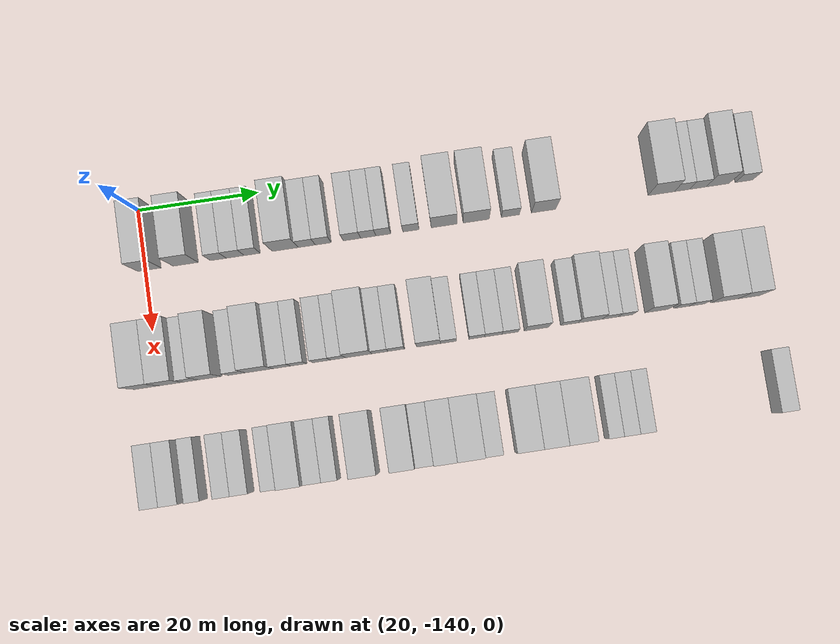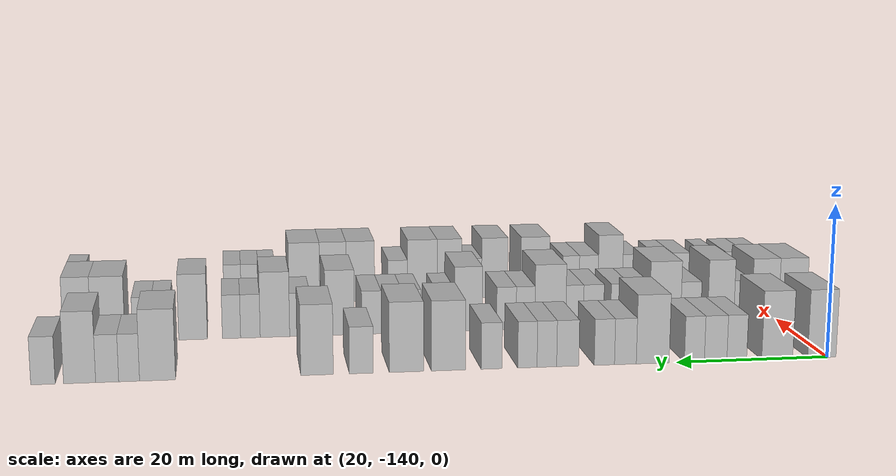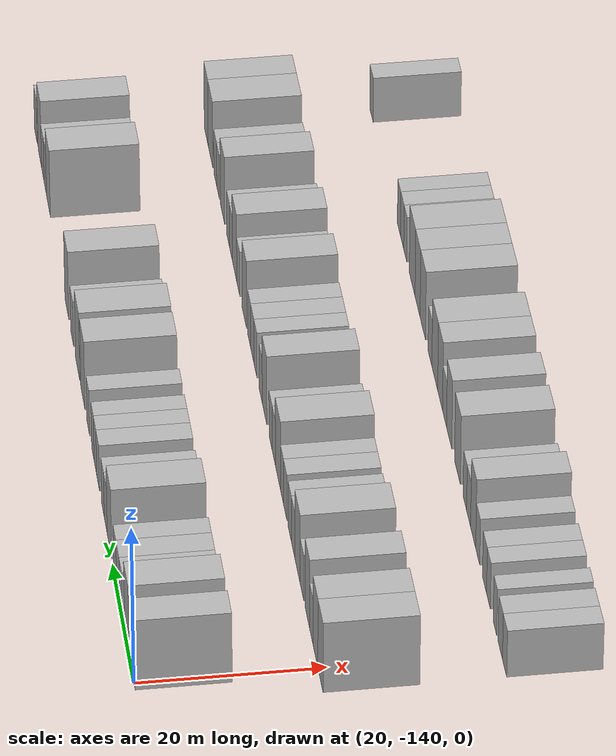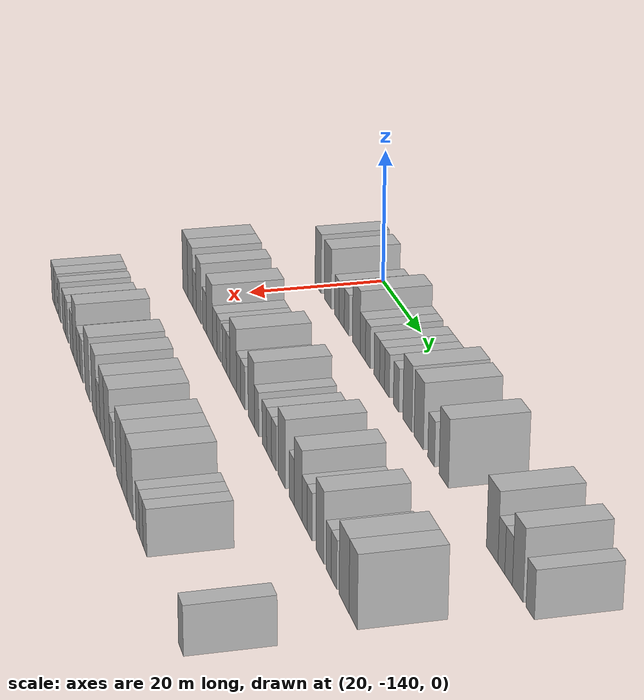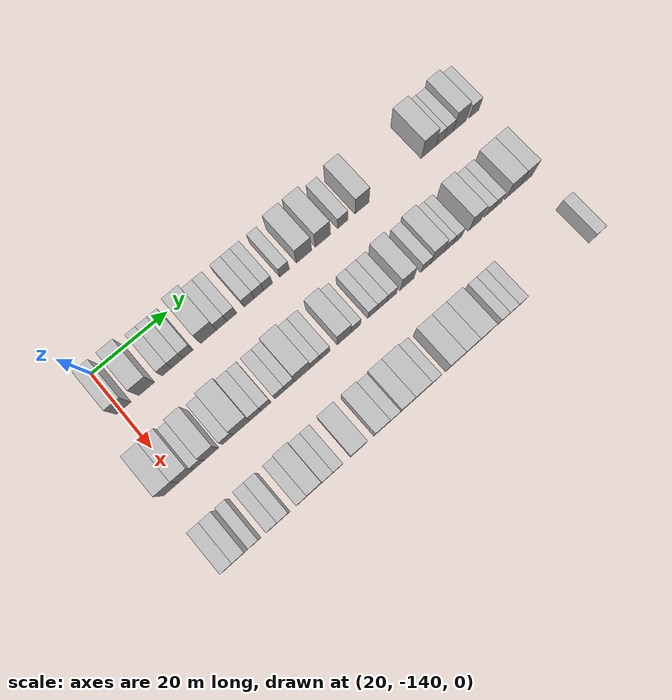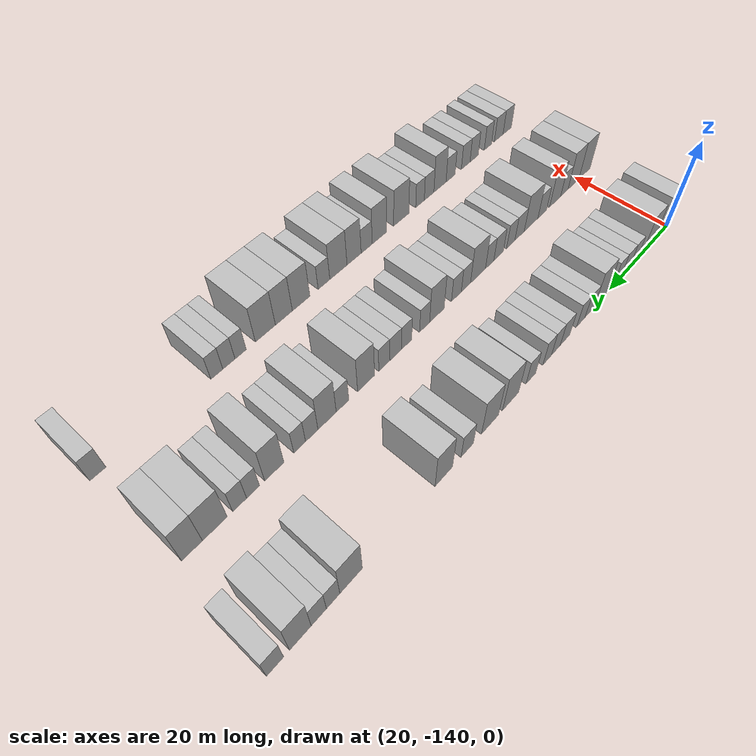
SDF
<sdf version="1.6">
 <world name="default">
  <model name="building_25">
   <static>1</static>
   <pose>25.0000 -139.2544 0 0.000000 0.000000 0.000000</pose>
   <link name="link">
    <pose>0 0 4.50 0 0 0</pose>
    <collision name="collision"><geometry><box><size>10.0000 3.7864 9.0000</size></box></geometry></collision>
    <visual name="visual">
     <cast_shadows>0</cast_shadows>
     <geometry><box><size>10.0000 3.7864 9.0000</size></box></geometry>
     <material>
      <script>
       <uri>model://HANNAS_wall/materials/scripts</uri>
       <uri>model://HANNAS_wall/materials/textures</uri>
       <name>vrc/HANNAS_wall</name>
      </script>
     </material>
    </visual>
   </link>
  </model>
  <model name="building_26">
   <static>1</static>
   <pose>25.0000 -133.3032 0 0.000000 0.000000 0.000000</pose>
   <link name="link">
    <pose>0 0 4.50 0 0 0</pose>
    <collision name="collision"><geometry><box><size>10.0000 4.1161 9.0000</size></box></geometry></collision>
    <visual name="visual">
     <cast_shadows>0</cast_shadows>
     <geometry><box><size>10.0000 4.1161 9.0000</size></box></geometry>
     <material>
      <script>
       <uri>model://HANNAS_wall/materials/scripts</uri>
       <uri>model://HANNAS_wall/materials/textures</uri>
       <name>vrc/HANNAS_wall</name>
      </script>
     </material>
    </visual>
   </link>
  </model>
  <model name="building_27">
   <static>1</static>
   <pose>25.0000 -127.9376 0 0.000000 0.000000 0.000000</pose>
   <link name="link">
    <pose>0 0 3.00 0 0 0</pose>
    <collision name="collision"><geometry><box><size>10.0000 2.6151 6.0000</size></box></geometry></collision>
    <visual name="visual">
     <cast_shadows>0</cast_shadows>
     <geometry><box><size>10.0000 2.6151 6.0000</size></box></geometry>
     <material>
      <script>
       <uri>model://HANNAS_wall/materials/scripts</uri>
       <uri>model://HANNAS_wall/materials/textures</uri>
       <name>vrc/HANNAS_wall</name>
      </script>
     </material>
    </visual>
   </link>
  </model>
  <model name="building_28">
   <static>1</static>
   <pose>25.0000 -125.1480 0 0.000000 0.000000 0.000000</pose>
   <link name="link">
    <pose>0 0 3.00 0 0 0</pose>
    <collision name="collision"><geometry><box><size>10.0000 2.9643 6.0000</size></box></geometry></collision>
    <visual name="visual">
     <cast_shadows>0</cast_shadows>
     <geometry><box><size>10.0000 2.9643 6.0000</size></box></geometry>
     <material>
      <script>
       <uri>model://HANNAS_wall/materials/scripts</uri>
       <uri>model://HANNAS_wall/materials/textures</uri>
       <name>vrc/HANNAS_wall</name>
      </script>
     </material>
    </visual>
   </link>
  </model>
  <model name="building_29">
   <static>1</static>
   <pose>25.0000 -122.3587 0 0.000000 0.000000 0.000000</pose>
   <link name="link">
    <pose>0 0 3.00 0 0 0</pose>
    <collision name="collision"><geometry><box><size>10.0000 2.6142 6.0000</size></box></geometry></collision>
    <visual name="visual">
     <cast_shadows>0</cast_shadows>
     <geometry><box><size>10.0000 2.6142 6.0000</size></box></geometry>
     <material>
      <script>
       <uri>model://HANNAS_wall/materials/scripts</uri>
       <uri>model://HANNAS_wall/materials/textures</uri>
       <name>vrc/HANNAS_wall</name>
      </script>
     </material>
    </visual>
   </link>
  </model>
  <model name="building_30">
   <static>1</static>
   <pose>25.0000 -116.9087 0 0.000000 0.000000 0.000000</pose>
   <link name="link">
    <pose>0 0 4.50 0 0 0</pose>
    <collision name="collision"><geometry><box><size>10.0000 4.2858 9.0000</size></box></geometry></collision>
    <visual name="visual">
     <cast_shadows>0</cast_shadows>
     <geometry><box><size>10.0000 4.2858 9.0000</size></box></geometry>
     <material>
      <script>
       <uri>model://HANNAS_wall/materials/scripts</uri>
       <uri>model://HANNAS_wall/materials/textures</uri>
       <name>vrc/HANNAS_wall</name>
      </script>
     </material>
    </visual>
   </link>
  </model>
  <model name="building_31">
   <static>1</static>
   <pose>25.0000 -113.3507 0 0.000000 0.000000 0.000000</pose>
   <link name="link">
    <pose>0 0 3.00 0 0 0</pose>
    <collision name="collision"><geometry><box><size>10.0000 2.8301 6.0000</size></box></geometry></collision>
    <visual name="visual">
     <cast_shadows>0</cast_shadows>
     <geometry><box><size>10.0000 2.8301 6.0000</size></box></geometry>
     <material>
      <script>
       <uri>model://HANNAS_wall/materials/scripts</uri>
       <uri>model://HANNAS_wall/materials/textures</uri>
       <name>vrc/HANNAS_wall</name>
      </script>
     </material>
    </visual>
   </link>
  </model>
  <model name="building_32">
   <static>1</static>
   <pose>25.0000 -110.6282 0 0.000000 0.000000 0.000000</pose>
   <link name="link">
    <pose>0 0 3.00 0 0 0</pose>
    <collision name="collision"><geometry><box><size>10.0000 2.6151 6.0000</size></box></geometry></collision>
    <visual name="visual">
     <cast_shadows>0</cast_shadows>
     <geometry><box><size>10.0000 2.6151 6.0000</size></box></geometry>
     <material>
      <script>
       <uri>model://HANNAS_wall/materials/scripts</uri>
       <uri>model://HANNAS_wall/materials/textures</uri>
       <name>vrc/HANNAS_wall</name>
      </script>
     </material>
    </visual>
   </link>
  </model>
  <model name="building_33">
   <static>1</static>
   <pose>25.0000 -105.8945 0 0.000000 0.000000 0.000000</pose>
   <link name="link">
    <pose>0 0 3.00 0 0 0</pose>
    <collision name="collision"><geometry><box><size>10.0000 2.8522 6.0000</size></box></geometry></collision>
    <visual name="visual">
     <cast_shadows>0</cast_shadows>
     <geometry><box><size>10.0000 2.8522 6.0000</size></box></geometry>
     <material>
      <script>
       <uri>model://HANNAS_wall/materials/scripts</uri>
       <uri>model://HANNAS_wall/materials/textures</uri>
       <name>vrc/HANNAS_wall</name>
      </script>
     </material>
    </visual>
   </link>
  </model>
  <model name="building_34">
   <static>1</static>
   <pose>25.0000 -103.2093 0 0.000000 0.000000 0.000000</pose>
   <link name="link">
    <pose>0 0 3.00 0 0 0</pose>
    <collision name="collision"><geometry><box><size>10.0000 2.5183 6.0000</size></box></geometry></collision>
    <visual name="visual">
     <cast_shadows>0</cast_shadows>
     <geometry><box><size>10.0000 2.5183 6.0000</size></box></geometry>
     <material>
      <script>
       <uri>model://HANNAS_wall/materials/scripts</uri>
       <uri>model://HANNAS_wall/materials/textures</uri>
       <name>vrc/HANNAS_wall</name>
      </script>
     </material>
    </visual>
   </link>
  </model>
  <model name="building_35">
   <static>1</static>
   <pose>25.0000 -100.7163 0 0.000000 0.000000 0.000000</pose>
   <link name="link">
    <pose>0 0 3.00 0 0 0</pose>
    <collision name="collision"><geometry><box><size>10.0000 2.4675 6.0000</size></box></geometry></collision>
    <visual name="visual">
     <cast_shadows>0</cast_shadows>
     <geometry><box><size>10.0000 2.4675 6.0000</size></box></geometry>
     <material>
      <script>
       <uri>model://HANNAS_wall/materials/scripts</uri>
       <uri>model://HANNAS_wall/materials/textures</uri>
       <name>vrc/HANNAS_wall</name>
      </script>
     </material>
    </visual>
   </link>
  </model>
  <model name="building_36">
   <static>1</static>
   <pose>25.0000 -96.1519 0 0.000000 0.000000 0.000000</pose>
   <link name="link">
    <pose>0 0 3.00 0 0 0</pose>
    <collision name="collision"><geometry><box><size>10.0000 2.6613 6.0000</size></box></geometry></collision>
    <visual name="visual">
     <cast_shadows>0</cast_shadows>
     <geometry><box><size>10.0000 2.6613 6.0000</size></box></geometry>
     <material>
      <script>
       <uri>model://HANNAS_wall/materials/scripts</uri>
       <uri>model://HANNAS_wall/materials/textures</uri>
       <name>vrc/HANNAS_wall</name>
      </script>
     </material>
    </visual>
   </link>
  </model>
  <model name="building_37">
   <static>1</static>
   <pose>25.0000 -90.6759 0 0.000000 0.000000 0.000000</pose>
   <link name="link">
    <pose>0 0 4.50 0 0 0</pose>
    <collision name="collision"><geometry><box><size>10.0000 4.2906 9.0000</size></box></geometry></collision>
    <visual name="visual">
     <cast_shadows>0</cast_shadows>
     <geometry><box><size>10.0000 4.2906 9.0000</size></box></geometry>
     <material>
      <script>
       <uri>model://HANNAS_wall/materials/scripts</uri>
       <uri>model://HANNAS_wall/materials/textures</uri>
       <name>vrc/HANNAS_wall</name>
      </script>
     </material>
    </visual>
   </link>
  </model>
  <model name="building_38">
   <static>1</static>
   <pose>25.0000 -85.3787 0 0.000000 0.000000 0.000000</pose>
   <link name="link">
    <pose>0 0 4.50 0 0 0</pose>
    <collision name="collision"><geometry><box><size>10.0000 4.3038 9.0000</size></box></geometry></collision>
    <visual name="visual">
     <cast_shadows>0</cast_shadows>
     <geometry><box><size>10.0000 4.3038 9.0000</size></box></geometry>
     <material>
      <script>
       <uri>model://HANNAS_wall/materials/scripts</uri>
       <uri>model://HANNAS_wall/materials/textures</uri>
       <name>vrc/HANNAS_wall</name>
      </script>
     </material>
    </visual>
   </link>
  </model>
  <model name="building_39">
   <static>1</static>
   <pose>25.0000 -79.7324 0 0.000000 0.000000 0.000000</pose>
   <link name="link">
    <pose>0 0 3.00 0 0 0</pose>
    <collision name="collision"><geometry><box><size>10.0000 2.9890 6.0000</size></box></geometry></collision>
    <visual name="visual">
     <cast_shadows>0</cast_shadows>
     <geometry><box><size>10.0000 2.9890 6.0000</size></box></geometry>
     <material>
      <script>
       <uri>model://HANNAS_wall/materials/scripts</uri>
       <uri>model://HANNAS_wall/materials/textures</uri>
       <name>vrc/HANNAS_wall</name>
      </script>
     </material>
    </visual>
   </link>
  </model>
  <model name="building_40">
   <static>1</static>
   <pose>25.0000 -74.2190 0 0.000000 0.000000 0.000000</pose>
   <link name="link">
    <pose>0 0 4.50 0 0 0</pose>
    <collision name="collision"><geometry><box><size>10.0000 4.0378 9.0000</size></box></geometry></collision>
    <visual name="visual">
     <cast_shadows>0</cast_shadows>
     <geometry><box><size>10.0000 4.0378 9.0000</size></box></geometry>
     <material>
      <script>
       <uri>model://HANNAS_wall/materials/scripts</uri>
       <uri>model://HANNAS_wall/materials/textures</uri>
       <name>vrc/HANNAS_wall</name>
      </script>
     </material>
    </visual>
   </link>
  </model>
  <model name="building_41">
   <static>1</static>
   <pose>25.0000 -54.6580 0 0.000000 0.000000 0.000000</pose>
   <link name="link">
    <pose>0 0 4.50 0 0 0</pose>
    <collision name="collision"><geometry><box><size>10.0000 4.3614 9.0000</size></box></geometry></collision>
    <visual name="visual">
     <cast_shadows>0</cast_shadows>
     <geometry><box><size>10.0000 4.3614 9.0000</size></box></geometry>
     <material>
      <script>
       <uri>model://HANNAS_wall/materials/scripts</uri>
       <uri>model://HANNAS_wall/materials/textures</uri>
       <name>vrc/HANNAS_wall</name>
      </script>
     </material>
    </visual>
   </link>
  </model>
  <model name="building_42">
   <static>1</static>
   <pose>25.0000 -51.2182 0 0.000000 0.000000 0.000000</pose>
   <link name="link">
    <pose>0 0 3.00 0 0 0</pose>
    <collision name="collision"><geometry><box><size>10.0000 2.5180 6.0000</size></box></geometry></collision>
    <visual name="visual">
     <cast_shadows>0</cast_shadows>
     <geometry><box><size>10.0000 2.5180 6.0000</size></box></geometry>
     <material>
      <script>
       <uri>model://HANNAS_wall/materials/scripts</uri>
       <uri>model://HANNAS_wall/materials/textures</uri>
       <name>vrc/HANNAS_wall</name>
      </script>
     </material>
    </visual>
   </link>
  </model>
  <model name="building_43">
   <static>1</static>
   <pose>25.0000 -48.5758 0 0.000000 0.000000 0.000000</pose>
   <link name="link">
    <pose>0 0 3.00 0 0 0</pose>
    <collision name="collision"><geometry><box><size>10.0000 2.7668 6.0000</size></box></geometry></collision>
    <visual name="visual">
     <cast_shadows>0</cast_shadows>
     <geometry><box><size>10.0000 2.7668 6.0000</size></box></geometry>
     <material>
      <script>
       <uri>model://HANNAS_wall/materials/scripts</uri>
       <uri>model://HANNAS_wall/materials/textures</uri>
       <name>vrc/HANNAS_wall</name>
      </script>
     </material>
    </visual>
   </link>
  </model>
  <model name="building_44">
   <static>1</static>
   <pose>25.0000 -45.2678 0 0.000000 0.000000 0.000000</pose>
   <link name="link">
    <pose>0 0 4.50 0 0 0</pose>
    <collision name="collision"><geometry><box><size>10.0000 3.8492 9.0000</size></box></geometry></collision>
    <visual name="visual">
     <cast_shadows>0</cast_shadows>
     <geometry><box><size>10.0000 3.8492 9.0000</size></box></geometry>
     <material>
      <script>
       <uri>model://HANNAS_wall/materials/scripts</uri>
       <uri>model://HANNAS_wall/materials/textures</uri>
       <name>vrc/HANNAS_wall</name>
      </script>
     </material>
    </visual>
   </link>
  </model>
  <model name="building_45">
   <static>1</static>
   <pose>25.0000 -40.8838 0 0.000000 0.000000 0.000000</pose>
   <link name="link">
    <pose>0 0 3.00 0 0 0</pose>
    <collision name="collision"><geometry><box><size>10.0000 2.9189 6.0000</size></box></geometry></collision>
    <visual name="visual">
     <cast_shadows>0</cast_shadows>
     <geometry><box><size>10.0000 2.9189 6.0000</size></box></geometry>
     <material>
      <script>
       <uri>model://HANNAS_wall/materials/scripts</uri>
       <uri>model://HANNAS_wall/materials/textures</uri>
       <name>vrc/HANNAS_wall</name>
      </script>
     </material>
    </visual>
   </link>
  </model>
  <model name="building_135">
   <static>1</static>
   <pose>44.0000 -141.9978 0 0.000000 0.000000 0.000000</pose>
   <link name="link">
    <pose>0 0 4.50 0 0 0</pose>
    <collision name="collision"><geometry><box><size>10.0000 4.0523 9.0000</size></box></geometry></collision>
    <visual name="visual">
     <cast_shadows>0</cast_shadows>
     <geometry><box><size>10.0000 4.0523 9.0000</size></box></geometry>
     <material>
      <script>
       <uri>model://HANNAS_wall/materials/scripts</uri>
       <uri>model://HANNAS_wall/materials/textures</uri>
       <name>vrc/HANNAS_wall</name>
      </script>
     </material>
    </visual>
   </link>
  </model>
  <model name="building_136">
   <static>1</static>
   <pose>44.0000 -138.0297 0 0.000000 0.000000 0.000000</pose>
   <link name="link">
    <pose>0 0 4.50 0 0 0</pose>
    <collision name="collision"><geometry><box><size>10.0000 3.8838 9.0000</size></box></geometry></collision>
    <visual name="visual">
     <cast_shadows>0</cast_shadows>
     <geometry><box><size>10.0000 3.8838 9.0000</size></box></geometry>
     <material>
      <script>
       <uri>model://HANNAS_wall/materials/scripts</uri>
       <uri>model://HANNAS_wall/materials/textures</uri>
       <name>vrc/HANNAS_wall</name>
      </script>
     </material>
    </visual>
   </link>
  </model>
  <model name="building_137">
   <static>1</static>
   <pose>44.0000 -134.7954 0 0.000000 0.000000 0.000000</pose>
   <link name="link">
    <pose>0 0 3.00 0 0 0</pose>
    <collision name="collision"><geometry><box><size>10.0000 2.5848 6.0000</size></box></geometry></collision>
    <visual name="visual">
     <cast_shadows>0</cast_shadows>
     <geometry><box><size>10.0000 2.5848 6.0000</size></box></geometry>
     <material>
      <script>
       <uri>model://HANNAS_wall/materials/scripts</uri>
       <uri>model://HANNAS_wall/materials/textures</uri>
       <name>vrc/HANNAS_wall</name>
      </script>
     </material>
    </visual>
   </link>
  </model>
  <model name="building_138">
   <static>1</static>
   <pose>44.0000 -131.6285 0 0.000000 0.000000 0.000000</pose>
   <link name="link">
    <pose>0 0 4.50 0 0 0</pose>
    <collision name="collision"><geometry><box><size>10.0000 3.7489 9.0000</size></box></geometry></collision>
    <visual name="visual">
     <cast_shadows>0</cast_shadows>
     <geometry><box><size>10.0000 3.7489 9.0000</size></box></geometry>
     <material>
      <script>
       <uri>model://HANNAS_wall/materials/scripts</uri>
       <uri>model://HANNAS_wall/materials/textures</uri>
       <name>vrc/HANNAS_wall</name>
      </script>
     </material>
    </visual>
   </link>
  </model>
  <model name="building_139">
   <static>1</static>
   <pose>44.0000 -127.3191 0 0.000000 0.000000 0.000000</pose>
   <link name="link">
    <pose>0 0 3.00 0 0 0</pose>
    <collision name="collision"><geometry><box><size>10.0000 2.8699 6.0000</size></box></geometry></collision>
    <visual name="visual">
     <cast_shadows>0</cast_shadows>
     <geometry><box><size>10.0000 2.8699 6.0000</size></box></geometry>
     <material>
      <script>
       <uri>model://HANNAS_wall/materials/scripts</uri>
       <uri>model://HANNAS_wall/materials/textures</uri>
       <name>vrc/HANNAS_wall</name>
      </script>
     </material>
    </visual>
   </link>
  </model>
  <model name="building_140">
   <static>1</static>
   <pose>44.0000 -123.6634 0 0.000000 0.000000 0.000000</pose>
   <link name="link">
    <pose>0 0 4.50 0 0 0</pose>
    <collision name="collision"><geometry><box><size>10.0000 4.4414 9.0000</size></box></geometry></collision>
    <visual name="visual">
     <cast_shadows>0</cast_shadows>
     <geometry><box><size>10.0000 4.4414 9.0000</size></box></geometry>
     <material>
      <script>
       <uri>model://HANNAS_wall/materials/scripts</uri>
       <uri>model://HANNAS_wall/materials/textures</uri>
       <name>vrc/HANNAS_wall</name>
      </script>
     </material>
    </visual>
   </link>
  </model>
  <model name="building_141">
   <static>1</static>
   <pose>44.0000 -119.9744 0 0.000000 0.000000 0.000000</pose>
   <link name="link">
    <pose>0 0 3.00 0 0 0</pose>
    <collision name="collision"><geometry><box><size>10.0000 2.9366 6.0000</size></box></geometry></collision>
    <visual name="visual">
     <cast_shadows>0</cast_shadows>
     <geometry><box><size>10.0000 2.9366 6.0000</size></box></geometry>
     <material>
      <script>
       <uri>model://HANNAS_wall/materials/scripts</uri>
       <uri>model://HANNAS_wall/materials/textures</uri>
       <name>vrc/HANNAS_wall</name>
      </script>
     </material>
    </visual>
   </link>
  </model>
  <model name="building_142">
   <static>1</static>
   <pose>44.0000 -117.2152 0 0.000000 0.000000 0.000000</pose>
   <link name="link">
    <pose>0 0 3.00 0 0 0</pose>
    <collision name="collision"><geometry><box><size>10.0000 2.5819 6.0000</size></box></geometry></collision>
    <visual name="visual">
     <cast_shadows>0</cast_shadows>
     <geometry><box><size>10.0000 2.5819 6.0000</size></box></geometry>
     <material>
      <script>
       <uri>model://HANNAS_wall/materials/scripts</uri>
       <uri>model://HANNAS_wall/materials/textures</uri>
       <name>vrc/HANNAS_wall</name>
      </script>
     </material>
    </visual>
   </link>
  </model>
  <model name="building_143">
   <static>1</static>
   <pose>44.0000 -113.5004 0 0.000000 0.000000 0.000000</pose>
   <link name="link">
    <pose>0 0 3.00 0 0 0</pose>
    <collision name="collision"><geometry><box><size>10.0000 2.8476 6.0000</size></box></geometry></collision>
    <visual name="visual">
     <cast_shadows>0</cast_shadows>
     <geometry><box><size>10.0000 2.8476 6.0000</size></box></geometry>
     <material>
      <script>
       <uri>model://HANNAS_wall/materials/scripts</uri>
       <uri>model://HANNAS_wall/materials/textures</uri>
       <name>vrc/HANNAS_wall</name>
      </script>
     </material>
    </visual>
   </link>
  </model>
  <model name="building_144">
   <static>1</static>
   <pose>44.0000 -110.8420 0 0.000000 0.000000 0.000000</pose>
   <link name="link">
    <pose>0 0 3.00 0 0 0</pose>
    <collision name="collision"><geometry><box><size>10.0000 2.4692 6.0000</size></box></geometry></collision>
    <visual name="visual">
     <cast_shadows>0</cast_shadows>
     <geometry><box><size>10.0000 2.4692 6.0000</size></box></geometry>
     <material>
      <script>
       <uri>model://HANNAS_wall/materials/scripts</uri>
       <uri>model://HANNAS_wall/materials/textures</uri>
       <name>vrc/HANNAS_wall</name>
      </script>
     </material>
    </visual>
   </link>
  </model>
  <model name="building_145">
   <static>1</static>
   <pose>44.0000 -107.4415 0 0.000000 0.000000 0.000000</pose>
   <link name="link">
    <pose>0 0 4.50 0 0 0</pose>
    <collision name="collision"><geometry><box><size>10.0000 4.3319 9.0000</size></box></geometry></collision>
    <visual name="visual">
     <cast_shadows>0</cast_shadows>
     <geometry><box><size>10.0000 4.3319 9.0000</size></box></geometry>
     <material>
      <script>
       <uri>model://HANNAS_wall/materials/scripts</uri>
       <uri>model://HANNAS_wall/materials/textures</uri>
       <name>vrc/HANNAS_wall</name>
      </script>
     </material>
    </visual>
   </link>
  </model>
  <model name="building_146">
   <static>1</static>
   <pose>44.0000 -103.9727 0 0.000000 0.000000 0.000000</pose>
   <link name="link">
    <pose>0 0 3.00 0 0 0</pose>
    <collision name="collision"><geometry><box><size>10.0000 2.6058 6.0000</size></box></geometry></collision>
    <visual name="visual">
     <cast_shadows>0</cast_shadows>
     <geometry><box><size>10.0000 2.6058 6.0000</size></box></geometry>
     <material>
      <script>
       <uri>model://HANNAS_wall/materials/scripts</uri>
       <uri>model://HANNAS_wall/materials/textures</uri>
       <name>vrc/HANNAS_wall</name>
      </script>
     </material>
    </visual>
   </link>
  </model>
  <model name="building_147">
   <static>1</static>
   <pose>44.0000 -101.3130 0 0.000000 0.000000 0.000000</pose>
   <link name="link">
    <pose>0 0 3.00 0 0 0</pose>
    <collision name="collision"><geometry><box><size>10.0000 2.7137 6.0000</size></box></geometry></collision>
    <visual name="visual">
     <cast_shadows>0</cast_shadows>
     <geometry><box><size>10.0000 2.7137 6.0000</size></box></geometry>
     <material>
      <script>
       <uri>model://HANNAS_wall/materials/scripts</uri>
       <uri>model://HANNAS_wall/materials/textures</uri>
       <name>vrc/HANNAS_wall</name>
      </script>
     </material>
    </visual>
   </link>
  </model>
  <model name="building_148">
   <static>1</static>
   <pose>44.0000 -96.0257 0 0.000000 0.000000 0.000000</pose>
   <link name="link">
    <pose>0 0 4.50 0 0 0</pose>
    <collision name="collision"><geometry><box><size>10.0000 3.8609 9.0000</size></box></geometry></collision>
    <visual name="visual">
     <cast_shadows>0</cast_shadows>
     <geometry><box><size>10.0000 3.8609 9.0000</size></box></geometry>
     <material>
      <script>
       <uri>model://HANNAS_wall/materials/scripts</uri>
       <uri>model://HANNAS_wall/materials/textures</uri>
       <name>vrc/HANNAS_wall</name>
      </script>
     </material>
    </visual>
   </link>
  </model>
  <model name="building_149">
   <static>1</static>
   <pose>44.0000 -92.7889 0 0.000000 0.000000 0.000000</pose>
   <link name="link">
    <pose>0 0 3.00 0 0 0</pose>
    <collision name="collision"><geometry><box><size>10.0000 2.6127 6.0000</size></box></geometry></collision>
    <visual name="visual">
     <cast_shadows>0</cast_shadows>
     <geometry><box><size>10.0000 2.6127 6.0000</size></box></geometry>
     <material>
      <script>
       <uri>model://HANNAS_wall/materials/scripts</uri>
       <uri>model://HANNAS_wall/materials/textures</uri>
       <name>vrc/HANNAS_wall</name>
      </script>
     </material>
    </visual>
   </link>
  </model>
  <model name="building_150">
   <static>1</static>
   <pose>44.0000 -88.2064 0 0.000000 0.000000 0.000000</pose>
   <link name="link">
    <pose>0 0 3.00 0 0 0</pose>
    <collision name="collision"><geometry><box><size>10.0000 2.5524 6.0000</size></box></geometry></collision>
    <visual name="visual">
     <cast_shadows>0</cast_shadows>
     <geometry><box><size>10.0000 2.5524 6.0000</size></box></geometry>
     <material>
      <script>
       <uri>model://HANNAS_wall/materials/scripts</uri>
       <uri>model://HANNAS_wall/materials/textures</uri>
       <name>vrc/HANNAS_wall</name>
      </script>
     </material>
    </visual>
   </link>
  </model>
  <model name="building_151">
   <static>1</static>
   <pose>44.0000 -85.4962 0 0.000000 0.000000 0.000000</pose>
   <link name="link">
    <pose>0 0 3.00 0 0 0</pose>
    <collision name="collision"><geometry><box><size>10.0000 2.8680 6.0000</size></box></geometry></collision>
    <visual name="visual">
     <cast_shadows>0</cast_shadows>
     <geometry><box><size>10.0000 2.8680 6.0000</size></box></geometry>
     <material>
      <script>
       <uri>model://HANNAS_wall/materials/scripts</uri>
       <uri>model://HANNAS_wall/materials/textures</uri>
       <name>vrc/HANNAS_wall</name>
      </script>
     </material>
    </visual>
   </link>
  </model>
  <model name="building_152">
   <static>1</static>
   <pose>44.0000 -82.7260 0 0.000000 0.000000 0.000000</pose>
   <link name="link">
    <pose>0 0 3.00 0 0 0</pose>
    <collision name="collision"><geometry><box><size>10.0000 2.6724 6.0000</size></box></geometry></collision>
    <visual name="visual">
     <cast_shadows>0</cast_shadows>
     <geometry><box><size>10.0000 2.6724 6.0000</size></box></geometry>
     <material>
      <script>
       <uri>model://HANNAS_wall/materials/scripts</uri>
       <uri>model://HANNAS_wall/materials/textures</uri>
       <name>vrc/HANNAS_wall</name>
      </script>
     </material>
    </visual>
   </link>
  </model>
  <model name="building_153">
   <static>1</static>
   <pose>44.0000 -78.4082 0 0.000000 0.000000 0.000000</pose>
   <link name="link">
    <pose>0 0 4.50 0 0 0</pose>
    <collision name="collision"><geometry><box><size>10.0000 3.9632 9.0000</size></box></geometry></collision>
    <visual name="visual">
     <cast_shadows>0</cast_shadows>
     <geometry><box><size>10.0000 3.9632 9.0000</size></box></geometry>
     <material>
      <script>
       <uri>model://HANNAS_wall/materials/scripts</uri>
       <uri>model://HANNAS_wall/materials/textures</uri>
       <name>vrc/HANNAS_wall</name>
      </script>
     </material>
    </visual>
   </link>
  </model>
  <model name="building_154">
   <static>1</static>
   <pose>44.0000 -73.0214 0 0.000000 0.000000 0.000000</pose>
   <link name="link">
    <pose>0 0 3.00 0 0 0</pose>
    <collision name="collision"><geometry><box><size>10.0000 2.8102 6.0000</size></box></geometry></collision>
    <visual name="visual">
     <cast_shadows>0</cast_shadows>
     <geometry><box><size>10.0000 2.8102 6.0000</size></box></geometry>
     <material>
      <script>
       <uri>model://HANNAS_wall/materials/scripts</uri>
       <uri>model://HANNAS_wall/materials/textures</uri>
       <name>vrc/HANNAS_wall</name>
      </script>
     </material>
    </visual>
   </link>
  </model>
  <model name="building_155">
   <static>1</static>
   <pose>44.0000 -69.6318 0 0.000000 0.000000 0.000000</pose>
   <link name="link">
    <pose>0 0 4.50 0 0 0</pose>
    <collision name="collision"><geometry><box><size>10.0000 3.9691 9.0000</size></box></geometry></collision>
    <visual name="visual">
     <cast_shadows>0</cast_shadows>
     <geometry><box><size>10.0000 3.9691 9.0000</size></box></geometry>
     <material>
      <script>
       <uri>model://HANNAS_wall/materials/scripts</uri>
       <uri>model://HANNAS_wall/materials/textures</uri>
       <name>vrc/HANNAS_wall</name>
      </script>
     </material>
    </visual>
   </link>
  </model>
  <model name="building_156">
   <static>1</static>
   <pose>44.0000 -66.3333 0 0.000000 0.000000 0.000000</pose>
   <link name="link">
    <pose>0 0 3.00 0 0 0</pose>
    <collision name="collision"><geometry><box><size>10.0000 2.6279 6.0000</size></box></geometry></collision>
    <visual name="visual">
     <cast_shadows>0</cast_shadows>
     <geometry><box><size>10.0000 2.6279 6.0000</size></box></geometry>
     <material>
      <script>
       <uri>model://HANNAS_wall/materials/scripts</uri>
       <uri>model://HANNAS_wall/materials/textures</uri>
       <name>vrc/HANNAS_wall</name>
      </script>
     </material>
    </visual>
   </link>
  </model>
  <model name="building_157">
   <static>1</static>
   <pose>44.0000 -63.8006 0 0.000000 0.000000 0.000000</pose>
   <link name="link">
    <pose>0 0 3.00 0 0 0</pose>
    <collision name="collision"><geometry><box><size>10.0000 2.4376 6.0000</size></box></geometry></collision>
    <visual name="visual">
     <cast_shadows>0</cast_shadows>
     <geometry><box><size>10.0000 2.4376 6.0000</size></box></geometry>
     <material>
      <script>
       <uri>model://HANNAS_wall/materials/scripts</uri>
       <uri>model://HANNAS_wall/materials/textures</uri>
       <name>vrc/HANNAS_wall</name>
      </script>
     </material>
    </visual>
   </link>
  </model>
  <model name="building_158">
   <static>1</static>
   <pose>44.0000 -58.6760 0 0.000000 0.000000 0.000000</pose>
   <link name="link">
    <pose>0 0 4.50 0 0 0</pose>
    <collision name="collision"><geometry><box><size>10.0000 3.8116 9.0000</size></box></geometry></collision>
    <visual name="visual">
     <cast_shadows>0</cast_shadows>
     <geometry><box><size>10.0000 3.8116 9.0000</size></box></geometry>
     <material>
      <script>
       <uri>model://HANNAS_wall/materials/scripts</uri>
       <uri>model://HANNAS_wall/materials/textures</uri>
       <name>vrc/HANNAS_wall</name>
      </script>
     </material>
    </visual>
   </link>
  </model>
  <model name="building_159">
   <static>1</static>
   <pose>44.0000 -54.5281 0 0.000000 0.000000 0.000000</pose>
   <link name="link">
    <pose>0 0 3.00 0 0 0</pose>
    <collision name="collision"><geometry><box><size>10.0000 2.4842 6.0000</size></box></geometry></collision>
    <visual name="visual">
     <cast_shadows>0</cast_shadows>
     <geometry><box><size>10.0000 2.4842 6.0000</size></box></geometry>
     <material>
      <script>
       <uri>model://HANNAS_wall/materials/scripts</uri>
       <uri>model://HANNAS_wall/materials/textures</uri>
       <name>vrc/HANNAS_wall</name>
      </script>
     </material>
    </visual>
   </link>
  </model>
  <model name="building_160">
   <static>1</static>
   <pose>44.0000 -51.9869 0 0.000000 0.000000 0.000000</pose>
   <link name="link">
    <pose>0 0 3.00 0 0 0</pose>
    <collision name="collision"><geometry><box><size>10.0000 2.5982 6.0000</size></box></geometry></collision>
    <visual name="visual">
     <cast_shadows>0</cast_shadows>
     <geometry><box><size>10.0000 2.5982 6.0000</size></box></geometry>
     <material>
      <script>
       <uri>model://HANNAS_wall/materials/scripts</uri>
       <uri>model://HANNAS_wall/materials/textures</uri>
       <name>vrc/HANNAS_wall</name>
      </script>
     </material>
    </visual>
   </link>
  </model>
  <model name="building_161">
   <static>1</static>
   <pose>44.0000 -47.4550 0 0.000000 0.000000 0.000000</pose>
   <link name="link">
    <pose>0 0 4.50 0 0 0</pose>
    <collision name="collision"><geometry><box><size>10.0000 4.4655 9.0000</size></box></geometry></collision>
    <visual name="visual">
     <cast_shadows>0</cast_shadows>
     <geometry><box><size>10.0000 4.4655 9.0000</size></box></geometry>
     <material>
      <script>
       <uri>model://HANNAS_wall/materials/scripts</uri>
       <uri>model://HANNAS_wall/materials/textures</uri>
       <name>vrc/HANNAS_wall</name>
      </script>
     </material>
    </visual>
   </link>
  </model>
  <model name="building_162">
   <static>1</static>
   <pose>44.0000 -43.4016 0 0.000000 0.000000 0.000000</pose>
   <link name="link">
    <pose>0 0 4.50 0 0 0</pose>
    <collision name="collision"><geometry><box><size>10.0000 3.6413 9.0000</size></box></geometry></collision>
    <visual name="visual">
     <cast_shadows>0</cast_shadows>
     <geometry><box><size>10.0000 3.6413 9.0000</size></box></geometry>
     <material>
      <script>
       <uri>model://HANNAS_wall/materials/scripts</uri>
       <uri>model://HANNAS_wall/materials/textures</uri>
       <name>vrc/HANNAS_wall</name>
      </script>
     </material>
    </visual>
   </link>
  </model>
  <model name="building_259">
   <static>1</static>
   <pose>63.0000 -142.4930 0 0.000000 0.000000 0.000000</pose>
   <link name="link">
    <pose>0 0 3.00 0 0 0</pose>
    <collision name="collision"><geometry><box><size>10.0000 2.9171 6.0000</size></box></geometry></collision>
    <visual name="visual">
     <cast_shadows>0</cast_shadows>
     <geometry><box><size>10.0000 2.9171 6.0000</size></box></geometry>
     <material>
      <script>
       <uri>model://HANNAS_wall/materials/scripts</uri>
       <uri>model://HANNAS_wall/materials/textures</uri>
       <name>vrc/HANNAS_wall</name>
      </script>
     </material>
    </visual>
   </link>
  </model>
  <model name="building_260">
   <static>1</static>
   <pose>63.0000 -139.5360 0 0.000000 0.000000 0.000000</pose>
   <link name="link">
    <pose>0 0 3.00 0 0 0</pose>
    <collision name="collision"><geometry><box><size>10.0000 2.9970 6.0000</size></box></geometry></collision>
    <visual name="visual">
     <cast_shadows>0</cast_shadows>
     <geometry><box><size>10.0000 2.9970 6.0000</size></box></geometry>
     <material>
      <script>
       <uri>model://HANNAS_wall/materials/scripts</uri>
       <uri>model://HANNAS_wall/materials/textures</uri>
       <name>vrc/HANNAS_wall</name>
      </script>
     </material>
    </visual>
   </link>
  </model>
  <model name="building_261">
   <static>1</static>
   <pose>63.0000 -135.8128 0 0.000000 0.000000 0.000000</pose>
   <link name="link">
    <pose>0 0 3.00 0 0 0</pose>
    <collision name="collision"><geometry><box><size>10.0000 2.4493 6.0000</size></box></geometry></collision>
    <visual name="visual">
     <cast_shadows>0</cast_shadows>
     <geometry><box><size>10.0000 2.4493 6.0000</size></box></geometry>
     <material>
      <script>
       <uri>model://HANNAS_wall/materials/scripts</uri>
       <uri>model://HANNAS_wall/materials/textures</uri>
       <name>vrc/HANNAS_wall</name>
      </script>
     </material>
    </visual>
   </link>
  </model>
  <model name="building_262">
   <static>1</static>
   <pose>63.0000 -131.2306 0 0.000000 0.000000 0.000000</pose>
   <link name="link">
    <pose>0 0 3.00 0 0 0</pose>
    <collision name="collision"><geometry><box><size>10.0000 2.7152 6.0000</size></box></geometry></collision>
    <visual name="visual">
     <cast_shadows>0</cast_shadows>
     <geometry><box><size>10.0000 2.7152 6.0000</size></box></geometry>
     <material>
      <script>
       <uri>model://HANNAS_wall/materials/scripts</uri>
       <uri>model://HANNAS_wall/materials/textures</uri>
       <name>vrc/HANNAS_wall</name>
      </script>
     </material>
    </visual>
   </link>
  </model>
  <model name="building_263">
   <static>1</static>
   <pose>63.0000 -128.4721 0 0.000000 0.000000 0.000000</pose>
   <link name="link">
    <pose>0 0 3.00 0 0 0</pose>
    <collision name="collision"><geometry><box><size>10.0000 2.8017 6.0000</size></box></geometry></collision>
    <visual name="visual">
     <cast_shadows>0</cast_shadows>
     <geometry><box><size>10.0000 2.8017 6.0000</size></box></geometry>
     <material>
      <script>
       <uri>model://HANNAS_wall/materials/scripts</uri>
       <uri>model://HANNAS_wall/materials/textures</uri>
       <name>vrc/HANNAS_wall</name>
      </script>
     </material>
    </visual>
   </link>
  </model>
  <model name="building_264">
   <static>1</static>
   <pose>63.0000 -123.6531 0 0.000000 0.000000 0.000000</pose>
   <link name="link">
    <pose>0 0 3.00 0 0 0</pose>
    <collision name="collision"><geometry><box><size>10.0000 2.8362 6.0000</size></box></geometry></collision>
    <visual name="visual">
     <cast_shadows>0</cast_shadows>
     <geometry><box><size>10.0000 2.8362 6.0000</size></box></geometry>
     <material>
      <script>
       <uri>model://HANNAS_wall/materials/scripts</uri>
       <uri>model://HANNAS_wall/materials/textures</uri>
       <name>vrc/HANNAS_wall</name>
      </script>
     </material>
    </visual>
   </link>
  </model>
  <model name="building_265">
   <static>1</static>
   <pose>63.0000 -120.3678 0 0.000000 0.000000 0.000000</pose>
   <link name="link">
    <pose>0 0 4.50 0 0 0</pose>
    <collision name="collision"><geometry><box><size>10.0000 3.7345 9.0000</size></box></geometry></collision>
    <visual name="visual">
     <cast_shadows>0</cast_shadows>
     <geometry><box><size>10.0000 3.7345 9.0000</size></box></geometry>
     <material>
      <script>
       <uri>model://HANNAS_wall/materials/scripts</uri>
       <uri>model://HANNAS_wall/materials/textures</uri>
       <name>vrc/HANNAS_wall</name>
      </script>
     </material>
    </visual>
   </link>
  </model>
  <model name="building_266">
   <static>1</static>
   <pose>63.0000 -117.0578 0 0.000000 0.000000 0.000000</pose>
   <link name="link">
    <pose>0 0 3.00 0 0 0</pose>
    <collision name="collision"><geometry><box><size>10.0000 2.8855 6.0000</size></box></geometry></collision>
    <visual name="visual">
     <cast_shadows>0</cast_shadows>
     <geometry><box><size>10.0000 2.8855 6.0000</size></box></geometry>
     <material>
      <script>
       <uri>model://HANNAS_wall/materials/scripts</uri>
       <uri>model://HANNAS_wall/materials/textures</uri>
       <name>vrc/HANNAS_wall</name>
      </script>
     </material>
    </visual>
   </link>
  </model>
  <model name="building_267">
   <static>1</static>
   <pose>63.0000 -114.3488 0 0.000000 0.000000 0.000000</pose>
   <link name="link">
    <pose>0 0 3.00 0 0 0</pose>
    <collision name="collision"><geometry><box><size>10.0000 2.5325 6.0000</size></box></geometry></collision>
    <visual name="visual">
     <cast_shadows>0</cast_shadows>
     <geometry><box><size>10.0000 2.5325 6.0000</size></box></geometry>
     <material>
      <script>
       <uri>model://HANNAS_wall/materials/scripts</uri>
       <uri>model://HANNAS_wall/materials/textures</uri>
       <name>vrc/HANNAS_wall</name>
      </script>
     </material>
    </visual>
   </link>
  </model>
  <model name="building_268">
   <static>1</static>
   <pose>63.0000 -108.9227 0 0.000000 0.000000 0.000000</pose>
   <link name="link">
    <pose>0 0 4.50 0 0 0</pose>
    <collision name="collision"><geometry><box><size>10.0000 4.3197 9.0000</size></box></geometry></collision>
    <visual name="visual">
     <cast_shadows>0</cast_shadows>
     <geometry><box><size>10.0000 4.3197 9.0000</size></box></geometry>
     <material>
      <script>
       <uri>model://HANNAS_wall/materials/scripts</uri>
       <uri>model://HANNAS_wall/materials/textures</uri>
       <name>vrc/HANNAS_wall</name>
      </script>
     </material>
    </visual>
   </link>
  </model>
  <model name="building_269">
   <static>1</static>
   <pose>63.0000 -102.8018 0 0.000000 0.000000 0.000000</pose>
   <link name="link">
    <pose>0 0 4.50 0 0 0</pose>
    <collision name="collision"><geometry><box><size>10.0000 3.9220 9.0000</size></box></geometry></collision>
    <visual name="visual">
     <cast_shadows>0</cast_shadows>
     <geometry><box><size>10.0000 3.9220 9.0000</size></box></geometry>
     <material>
      <script>
       <uri>model://HANNAS_wall/materials/scripts</uri>
       <uri>model://HANNAS_wall/materials/textures</uri>
       <name>vrc/HANNAS_wall</name>
      </script>
     </material>
    </visual>
   </link>
  </model>
  <model name="building_270">
   <static>1</static>
   <pose>63.0000 -99.3603 0 0.000000 0.000000 0.000000</pose>
   <link name="link">
    <pose>0 0 3.00 0 0 0</pose>
    <collision name="collision"><geometry><box><size>10.0000 2.9610 6.0000</size></box></geometry></collision>
    <visual name="visual">
     <cast_shadows>0</cast_shadows>
     <geometry><box><size>10.0000 2.9610 6.0000</size></box></geometry>
     <material>
      <script>
       <uri>model://HANNAS_wall/materials/scripts</uri>
       <uri>model://HANNAS_wall/materials/textures</uri>
       <name>vrc/HANNAS_wall</name>
      </script>
     </material>
    </visual>
   </link>
  </model>
  <model name="building_271">
   <static>1</static>
   <pose>63.0000 -96.0343 0 0.000000 0.000000 0.000000</pose>
   <link name="link">
    <pose>0 0 4.50 0 0 0</pose>
    <collision name="collision"><geometry><box><size>10.0000 3.6910 9.0000</size></box></geometry></collision>
    <visual name="visual">
     <cast_shadows>0</cast_shadows>
     <geometry><box><size>10.0000 3.6910 9.0000</size></box></geometry>
     <material>
      <script>
       <uri>model://HANNAS_wall/materials/scripts</uri>
       <uri>model://HANNAS_wall/materials/textures</uri>
       <name>vrc/HANNAS_wall</name>
      </script>
     </material>
    </visual>
   </link>
  </model>
  <model name="building_272">
   <static>1</static>
   <pose>63.0000 -91.9987 0 0.000000 0.000000 0.000000</pose>
   <link name="link">
    <pose>0 0 4.50 0 0 0</pose>
    <collision name="collision"><geometry><box><size>10.0000 4.3802 9.0000</size></box></geometry></collision>
    <visual name="visual">
     <cast_shadows>0</cast_shadows>
     <geometry><box><size>10.0000 4.3802 9.0000</size></box></geometry>
     <material>
      <script>
       <uri>model://HANNAS_wall/materials/scripts</uri>
       <uri>model://HANNAS_wall/materials/textures</uri>
       <name>vrc/HANNAS_wall</name>
      </script>
     </material>
    </visual>
   </link>
  </model>
  <model name="building_273">
   <static>1</static>
   <pose>63.0000 -88.3613 0 0.000000 0.000000 0.000000</pose>
   <link name="link">
    <pose>0 0 3.00 0 0 0</pose>
    <collision name="collision"><geometry><box><size>10.0000 2.8946 6.0000</size></box></geometry></collision>
    <visual name="visual">
     <cast_shadows>0</cast_shadows>
     <geometry><box><size>10.0000 2.8946 6.0000</size></box></geometry>
     <material>
      <script>
       <uri>model://HANNAS_wall/materials/scripts</uri>
       <uri>model://HANNAS_wall/materials/textures</uri>
       <name>vrc/HANNAS_wall</name>
      </script>
     </material>
    </visual>
   </link>
  </model>
  <model name="building_274">
   <static>1</static>
   <pose>63.0000 -82.8245 0 0.000000 0.000000 0.000000</pose>
   <link name="link">
    <pose>0 0 4.50 0 0 0</pose>
    <collision name="collision"><geometry><box><size>10.0000 4.1788 9.0000</size></box></geometry></collision>
    <visual name="visual">
     <cast_shadows>0</cast_shadows>
     <geometry><box><size>10.0000 4.1788 9.0000</size></box></geometry>
     <material>
      <script>
       <uri>model://HANNAS_wall/materials/scripts</uri>
       <uri>model://HANNAS_wall/materials/textures</uri>
       <name>vrc/HANNAS_wall</name>
      </script>
     </material>
    </visual>
   </link>
  </model>
  <model name="building_275">
   <static>1</static>
   <pose>63.0000 -78.7759 0 0.000000 0.000000 0.000000</pose>
   <link name="link">
    <pose>0 0 4.50 0 0 0</pose>
    <collision name="collision"><geometry><box><size>10.0000 3.9184 9.0000</size></box></geometry></collision>
    <visual name="visual">
     <cast_shadows>0</cast_shadows>
     <geometry><box><size>10.0000 3.9184 9.0000</size></box></geometry>
     <material>
      <script>
       <uri>model://HANNAS_wall/materials/scripts</uri>
       <uri>model://HANNAS_wall/materials/textures</uri>
       <name>vrc/HANNAS_wall</name>
      </script>
     </material>
    </visual>
   </link>
  </model>
  <model name="building_276">
   <static>1</static>
   <pose>63.0000 -74.5694 0 0.000000 0.000000 0.000000</pose>
   <link name="link">
    <pose>0 0 4.50 0 0 0</pose>
    <collision name="collision"><geometry><box><size>10.0000 4.4947 9.0000</size></box></geometry></collision>
    <visual name="visual">
     <cast_shadows>0</cast_shadows>
     <geometry><box><size>10.0000 4.4947 9.0000</size></box></geometry>
     <material>
      <script>
       <uri>model://HANNAS_wall/materials/scripts</uri>
       <uri>model://HANNAS_wall/materials/textures</uri>
       <name>vrc/HANNAS_wall</name>
      </script>
     </material>
    </visual>
   </link>
  </model>
  <model name="building_277">
   <static>1</static>
   <pose>63.0000 -69.1179 0 0.000000 0.000000 0.000000</pose>
   <link name="link">
    <pose>0 0 3.00 0 0 0</pose>
    <collision name="collision"><geometry><box><size>10.0000 2.4084 6.0000</size></box></geometry></collision>
    <visual name="visual">
     <cast_shadows>0</cast_shadows>
     <geometry><box><size>10.0000 2.4084 6.0000</size></box></geometry>
     <material>
      <script>
       <uri>model://HANNAS_wall/materials/scripts</uri>
       <uri>model://HANNAS_wall/materials/textures</uri>
       <name>vrc/HANNAS_wall</name>
      </script>
     </material>
    </visual>
   </link>
  </model>
  <model name="building_278">
   <static>1</static>
   <pose>63.0000 -66.6341 0 0.000000 0.000000 0.000000</pose>
   <link name="link">
    <pose>0 0 3.00 0 0 0</pose>
    <collision name="collision"><geometry><box><size>10.0000 2.5593 6.0000</size></box></geometry></collision>
    <visual name="visual">
     <cast_shadows>0</cast_shadows>
     <geometry><box><size>10.0000 2.5593 6.0000</size></box></geometry>
     <material>
      <script>
       <uri>model://HANNAS_wall/materials/scripts</uri>
       <uri>model://HANNAS_wall/materials/textures</uri>
       <name>vrc/HANNAS_wall</name>
      </script>
     </material>
    </visual>
   </link>
  </model>
  <model name="building_279">
   <static>1</static>
   <pose>63.0000 -64.1040 0 0.000000 0.000000 0.000000</pose>
   <link name="link">
    <pose>0 0 3.00 0 0 0</pose>
    <collision name="collision"><geometry><box><size>10.0000 2.5010 6.0000</size></box></geometry></collision>
    <visual name="visual">
     <cast_shadows>0</cast_shadows>
     <geometry><box><size>10.0000 2.5010 6.0000</size></box></geometry>
     <material>
      <script>
       <uri>model://HANNAS_wall/materials/scripts</uri>
       <uri>model://HANNAS_wall/materials/textures</uri>
       <name>vrc/HANNAS_wall</name>
      </script>
     </material>
    </visual>
   </link>
  </model>
  <model name="building_280">
   <static>1</static>
   <pose>63.0000 -41.6166 0 0.000000 0.000000 0.000000</pose>
   <link name="link">
    <pose>0 0 3.00 0 0 0</pose>
    <collision name="collision"><geometry><box><size>10.0000 2.8246 6.0000</size></box></geometry></collision>
    <visual name="visual">
     <cast_shadows>0</cast_shadows>
     <geometry><box><size>10.0000 2.8246 6.0000</size></box></geometry>
     <material>
      <script>
       <uri>model://HANNAS_wall/materials/scripts</uri>
       <uri>model://HANNAS_wall/materials/textures</uri>
       <name>vrc/HANNAS_wall</name>
      </script>
     </material>
    </visual>
   </link>
  </model>
 </world>
</sdf>
